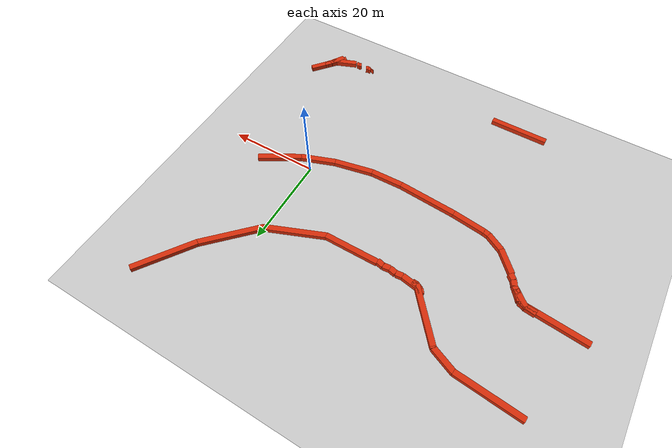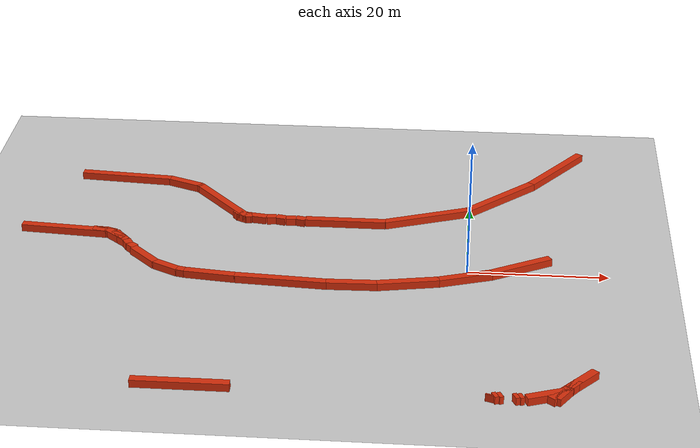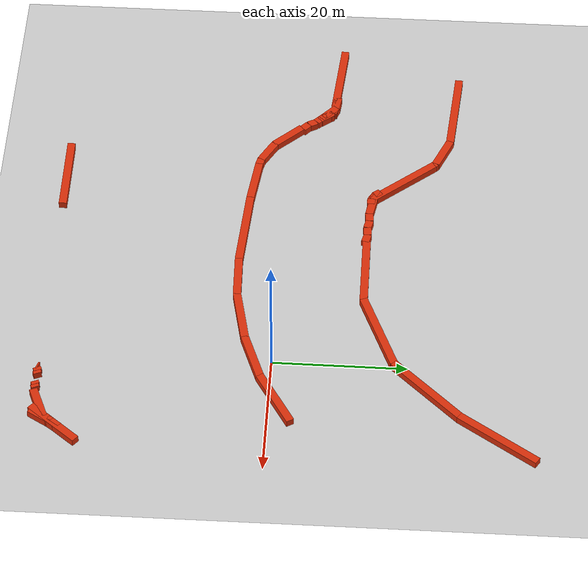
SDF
<sdf version="1.6">
 <world name="default">
  <include><uri>model://ground_plane</uri></include>
  <model name="track_inner_guardrail">
   <static>true</static>
   <link name="seg_015">
    <pose>-36.27 -33.86 0.55 0 0 0.0002</pose>
    <collision name="col"><geometry><box><size>13.00 1.20 1.1</size></box></geometry></collision>
    <visual name="vis">
     <geometry><box><size>13.00 1.20 1.1</size></box></geometry>
     <material>
      <ambient>0.35 0.08 0.02 1</ambient>
      <diffuse>0.85 0.18 0.04 1</diffuse>
      <specular>0.2 0.2 0.2 1</specular>
     </material>
    </visual>
   </link>
   <link name="seg_023">
    <pose>12.61 -32.78 0.55 0 0 1.0220</pose>
    <collision name="col"><geometry><box><size>3.21 1.20 1.1</size></box></geometry></collision>
    <visual name="vis">
     <geometry><box><size>3.21 1.20 1.1</size></box></geometry>
     <material>
      <ambient>0.35 0.08 0.02 1</ambient>
      <diffuse>0.85 0.18 0.04 1</diffuse>
      <specular>0.2 0.2 0.2 1</specular>
     </material>
    </visual>
   </link>
   <link name="seg_024">
    <pose>13.56 -31.17 0.55 0 0 1.1524</pose>
    <collision name="col"><geometry><box><size>0.67 1.20 1.1</size></box></geometry></collision>
    <visual name="vis">
     <geometry><box><size>0.67 1.20 1.1</size></box></geometry>
     <material>
      <ambient>0.35 0.08 0.02 1</ambient>
      <diffuse>0.85 0.18 0.04 1</diffuse>
      <specular>0.2 0.2 0.2 1</specular>
     </material>
    </visual>
   </link>
   <link name="seg_039">
    <pose>13.76 -30.94 0.55 0 0 -2.2137</pose>
    <collision name="col"><geometry><box><size>3.06 1.20 1.1</size></box></geometry></collision>
    <visual name="vis">
     <geometry><box><size>3.06 1.20 1.1</size></box></geometry>
     <material>
      <ambient>0.35 0.08 0.02 1</ambient>
      <diffuse>0.85 0.18 0.04 1</diffuse>
      <specular>0.2 0.2 0.2 1</specular>
     </material>
    </visual>
   </link>
   <link name="seg_040">
    <pose>10.44 -33.08 0.55 0 0 -2.7667</pose>
    <collision name="col"><geometry><box><size>5.35 1.20 1.1</size></box></geometry></collision>
    <visual name="vis">
     <geometry><box><size>5.35 1.20 1.1</size></box></geometry>
     <material>
      <ambient>0.35 0.08 0.02 1</ambient>
      <diffuse>0.85 0.18 0.04 1</diffuse>
      <specular>0.2 0.2 0.2 1</specular>
     </material>
    </visual>
   </link>
   <link name="seg_041">
    <pose>7.30 -33.90 0.55 0 0 -2.7241</pose>
    <collision name="col"><geometry><box><size>0.57 1.20 1.1</size></box></geometry></collision>
    <visual name="vis">
     <geometry><box><size>0.57 1.20 1.1</size></box></geometry>
     <material>
      <ambient>0.35 0.08 0.02 1</ambient>
      <diffuse>0.85 0.18 0.04 1</diffuse>
      <specular>0.2 0.2 0.2 1</specular>
     </material>
    </visual>
   </link>
   <link name="seg_042">
    <pose>6.69 -33.94 0.55 0 0 -2.7241</pose>
    <collision name="col"><geometry><box><size>0.57 1.20 1.1</size></box></geometry></collision>
    <visual name="vis">
     <geometry><box><size>0.57 1.20 1.1</size></box></geometry>
     <material>
      <ambient>0.35 0.08 0.02 1</ambient>
      <diffuse>0.85 0.18 0.04 1</diffuse>
      <specular>0.2 0.2 0.2 1</specular>
     </material>
    </visual>
   </link>
   <link name="seg_045">
    <pose>4.65 -33.88 0.55 0 0 -2.7241</pose>
    <collision name="col"><geometry><box><size>0.57 1.20 1.1</size></box></geometry></collision>
    <visual name="vis">
     <geometry><box><size>0.57 1.20 1.1</size></box></geometry>
     <material>
      <ambient>0.35 0.08 0.02 1</ambient>
      <diffuse>0.85 0.18 0.04 1</diffuse>
      <specular>0.2 0.2 0.2 1</specular>
     </material>
    </visual>
   </link>
   <link name="seg_046">
    <pose>4.03 -33.91 0.55 0 0 -2.7241</pose>
    <collision name="col"><geometry><box><size>0.57 1.20 1.1</size></box></geometry></collision>
    <visual name="vis">
     <geometry><box><size>0.57 1.20 1.1</size></box></geometry>
     <material>
      <ambient>0.35 0.08 0.02 1</ambient>
      <diffuse>0.85 0.18 0.04 1</diffuse>
      <specular>0.2 0.2 0.2 1</specular>
     </material>
    </visual>
   </link>
   <link name="seg_047">
    <pose>3.37 -33.96 0.55 0 0 1.2462</pose>
    <collision name="col"><geometry><box><size>0.23 1.20 1.1</size></box></geometry></collision>
    <visual name="vis">
     <geometry><box><size>0.23 1.20 1.1</size></box></geometry>
     <material>
      <ambient>0.35 0.08 0.02 1</ambient>
      <diffuse>0.85 0.18 0.04 1</diffuse>
      <specular>0.2 0.2 0.2 1</specular>
     </material>
    </visual>
   </link>
   <link name="seg_053">
    <pose>14.02 -30.56 0.55 0 0 0.8808</pose>
    <collision name="col"><geometry><box><size>9.22 1.20 1.1</size></box></geometry></collision>
    <visual name="vis">
     <geometry><box><size>9.22 1.20 1.1</size></box></geometry>
     <material>
      <ambient>0.35 0.08 0.02 1</ambient>
      <diffuse>0.85 0.18 0.04 1</diffuse>
      <specular>0.2 0.2 0.2 1</specular>
     </material>
    </visual>
   </link>
   <link name="seg_171">
    <pose>7.51 0.97 0.55 0 0 -2.6102</pose>
    <collision name="col"><geometry><box><size>9.80 1.20 1.1</size></box></geometry></collision>
    <visual name="vis">
     <geometry><box><size>9.80 1.20 1.1</size></box></geometry>
     <material>
      <ambient>0.35 0.08 0.02 1</ambient>
      <diffuse>0.85 0.18 0.04 1</diffuse>
      <specular>0.2 0.2 0.2 1</specular>
     </material>
    </visual>
   </link>
   <link name="seg_172">
    <pose>-0.34 -2.81 0.55 0 0 -2.7935</pose>
    <collision name="col"><geometry><box><size>7.96 1.20 1.1</size></box></geometry></collision>
    <visual name="vis">
     <geometry><box><size>7.96 1.20 1.1</size></box></geometry>
     <material>
      <ambient>0.35 0.08 0.02 1</ambient>
      <diffuse>0.85 0.18 0.04 1</diffuse>
      <specular>0.2 0.2 0.2 1</specular>
     </material>
    </visual>
   </link>
   <link name="seg_173">
    <pose>-8.31 -5.02 0.55 0 0 -2.9407</pose>
    <collision name="col"><geometry><box><size>8.87 1.20 1.1</size></box></geometry></collision>
    <visual name="vis">
     <geometry><box><size>8.87 1.20 1.1</size></box></geometry>
     <material>
      <ambient>0.35 0.08 0.02 1</ambient>
      <diffuse>0.85 0.18 0.04 1</diffuse>
      <specular>0.2 0.2 0.2 1</specular>
     </material>
    </visual>
   </link>
   <link name="seg_174">
    <pose>-16.16 -5.99 0.55 0 0 -3.1138</pose>
    <collision name="col"><geometry><box><size>7.26 1.20 1.1</size></box></geometry></collision>
    <visual name="vis">
     <geometry><box><size>7.26 1.20 1.1</size></box></geometry>
     <material>
      <ambient>0.35 0.08 0.02 1</ambient>
      <diffuse>0.85 0.18 0.04 1</diffuse>
      <specular>0.2 0.2 0.2 1</specular>
     </material>
    </visual>
   </link>
   <link name="seg_175">
    <pose>-26.22 -5.66 0.55 0 0 3.0745</pose>
    <collision name="col"><geometry><box><size>13.13 1.20 1.1</size></box></geometry></collision>
    <visual name="vis">
     <geometry><box><size>13.13 1.20 1.1</size></box></geometry>
     <material>
      <ambient>0.35 0.08 0.02 1</ambient>
      <diffuse>0.85 0.18 0.04 1</diffuse>
      <specular>0.2 0.2 0.2 1</specular>
     </material>
    </visual>
   </link>
   <link name="seg_176">
    <pose>-36.36 -4.78 0.55 0 0 3.0208</pose>
    <collision name="col"><geometry><box><size>7.48 1.20 1.1</size></box></geometry></collision>
    <visual name="vis">
     <geometry><box><size>7.48 1.20 1.1</size></box></geometry>
     <material>
      <ambient>0.35 0.08 0.02 1</ambient>
      <diffuse>0.85 0.18 0.04 1</diffuse>
      <specular>0.2 0.2 0.2 1</specular>
     </material>
    </visual>
   </link>
   <link name="seg_177">
    <pose>-40.56 -4.20 0.55 0 0 2.9054</pose>
    <collision name="col"><geometry><box><size>1.24 1.20 1.1</size></box></geometry></collision>
    <visual name="vis">
     <geometry><box><size>1.24 1.20 1.1</size></box></geometry>
     <material>
      <ambient>0.35 0.08 0.02 1</ambient>
      <diffuse>0.85 0.18 0.04 1</diffuse>
      <specular>0.2 0.2 0.2 1</specular>
     </material>
    </visual>
   </link>
   <link name="seg_178">
    <pose>-42.88 -3.12 0.55 0 0 2.6422</pose>
    <collision name="col"><geometry><box><size>4.04 1.20 1.1</size></box></geometry></collision>
    <visual name="vis">
     <geometry><box><size>4.04 1.20 1.1</size></box></geometry>
     <material>
      <ambient>0.35 0.08 0.02 1</ambient>
      <diffuse>0.85 0.18 0.04 1</diffuse>
      <specular>0.2 0.2 0.2 1</specular>
     </material>
    </visual>
   </link>
   <link name="seg_179">
    <pose>-46.54 -0.18 0.55 0 0 2.3341</pose>
    <collision name="col"><geometry><box><size>5.58 1.20 1.1</size></box></geometry></collision>
    <visual name="vis">
     <geometry><box><size>5.58 1.20 1.1</size></box></geometry>
     <material>
      <ambient>0.35 0.08 0.02 1</ambient>
      <diffuse>0.85 0.18 0.04 1</diffuse>
      <specular>0.2 0.2 0.2 1</specular>
     </material>
    </visual>
   </link>
   <link name="seg_180">
    <pose>-48.75 2.42 0.55 0 0 2.4054</pose>
    <collision name="col"><geometry><box><size>1.36 1.20 1.1</size></box></geometry></collision>
    <visual name="vis">
     <geometry><box><size>1.36 1.20 1.1</size></box></geometry>
     <material>
      <ambient>0.35 0.08 0.02 1</ambient>
      <diffuse>0.85 0.18 0.04 1</diffuse>
      <specular>0.2 0.2 0.2 1</specular>
     </material>
    </visual>
   </link>
   <link name="seg_181">
    <pose>-49.57 3.47 0.55 0 0 2.0626</pose>
    <collision name="col"><geometry><box><size>1.34 1.20 1.1</size></box></geometry></collision>
    <visual name="vis">
     <geometry><box><size>1.34 1.20 1.1</size></box></geometry>
     <material>
      <ambient>0.35 0.08 0.02 1</ambient>
      <diffuse>0.85 0.18 0.04 1</diffuse>
      <specular>0.2 0.2 0.2 1</specular>
     </material>
    </visual>
   </link>
   <link name="seg_182">
    <pose>-50.47 4.58 0.55 0 0 2.4052</pose>
    <collision name="col"><geometry><box><size>1.57 1.20 1.1</size></box></geometry></collision>
    <visual name="vis">
     <geometry><box><size>1.57 1.20 1.1</size></box></geometry>
     <material>
      <ambient>0.35 0.08 0.02 1</ambient>
      <diffuse>0.85 0.18 0.04 1</diffuse>
      <specular>0.2 0.2 0.2 1</specular>
     </material>
    </visual>
   </link>
   <link name="seg_183">
    <pose>-51.45 5.84 0.55 0 0 2.0725</pose>
    <collision name="col"><geometry><box><size>1.66 1.20 1.1</size></box></geometry></collision>
    <visual name="vis">
     <geometry><box><size>1.66 1.20 1.1</size></box></geometry>
     <material>
      <ambient>0.35 0.08 0.02 1</ambient>
      <diffuse>0.85 0.18 0.04 1</diffuse>
      <specular>0.2 0.2 0.2 1</specular>
     </material>
    </visual>
   </link>
   <link name="seg_184">
    <pose>-53.63 6.90 0.55 0 0 2.9560</pose>
    <collision name="col"><geometry><box><size>3.62 1.20 1.1</size></box></geometry></collision>
    <visual name="vis">
     <geometry><box><size>3.62 1.20 1.1</size></box></geometry>
     <material>
      <ambient>0.35 0.08 0.02 1</ambient>
      <diffuse>0.85 0.18 0.04 1</diffuse>
      <specular>0.2 0.2 0.2 1</specular>
     </material>
    </visual>
   </link>
   <link name="seg_185">
    <pose>-54.29 7.12 0.55 0 0 -0.0997</pose>
    <collision name="col"><geometry><box><size>2.37 1.20 1.1</size></box></geometry></collision>
    <visual name="vis">
     <geometry><box><size>2.37 1.20 1.1</size></box></geometry>
     <material>
      <ambient>0.35 0.08 0.02 1</ambient>
      <diffuse>0.85 0.18 0.04 1</diffuse>
      <specular>0.2 0.2 0.2 1</specular>
     </material>
    </visual>
   </link>
   <link name="seg_186">
    <pose>-51.93 5.91 0.55 0 0 -0.7277</pose>
    <collision name="col"><geometry><box><size>3.44 1.20 1.1</size></box></geometry></collision>
    <visual name="vis">
     <geometry><box><size>3.44 1.20 1.1</size></box></geometry>
     <material>
      <ambient>0.35 0.08 0.02 1</ambient>
      <diffuse>0.85 0.18 0.04 1</diffuse>
      <specular>0.2 0.2 0.2 1</specular>
     </material>
    </visual>
   </link>
   <link name="seg_187">
    <pose>-50.55 4.72 0.55 0 0 -0.5042</pose>
    <collision name="col"><geometry><box><size>0.46 1.20 1.1</size></box></geometry></collision>
    <visual name="vis">
     <geometry><box><size>0.46 1.20 1.1</size></box></geometry>
     <material>
      <ambient>0.35 0.08 0.02 1</ambient>
      <diffuse>0.85 0.18 0.04 1</diffuse>
      <specular>0.2 0.2 0.2 1</specular>
     </material>
    </visual>
   </link>
   <link name="seg_188">
    <pose>-51.17 5.56 0.55 0 0 2.2671</pose>
    <collision name="col"><geometry><box><size>2.52 1.20 1.1</size></box></geometry></collision>
    <visual name="vis">
     <geometry><box><size>2.52 1.20 1.1</size></box></geometry>
     <material>
      <ambient>0.35 0.08 0.02 1</ambient>
      <diffuse>0.85 0.18 0.04 1</diffuse>
      <specular>0.2 0.2 0.2 1</specular>
     </material>
    </visual>
   </link>
   <link name="seg_189">
    <pose>-52.68 6.78 0.55 0 0 2.7554</pose>
    <collision name="col"><geometry><box><size>1.61 1.20 1.1</size></box></geometry></collision>
    <visual name="vis">
     <geometry><box><size>1.61 1.20 1.1</size></box></geometry>
     <material>
      <ambient>0.35 0.08 0.02 1</ambient>
      <diffuse>0.85 0.18 0.04 1</diffuse>
      <specular>0.2 0.2 0.2 1</specular>
     </material>
    </visual>
   </link>
   <link name="seg_190">
    <pose>-59.77 7.36 0.55 0 0 3.0591</pose>
    <collision name="col"><geometry><box><size>12.81 1.20 1.1</size></box></geometry></collision>
    <visual name="vis">
     <geometry><box><size>12.81 1.20 1.1</size></box></geometry>
     <material>
      <ambient>0.35 0.08 0.02 1</ambient>
      <diffuse>0.85 0.18 0.04 1</diffuse>
      <specular>0.2 0.2 0.2 1</specular>
     </material>
    </visual>
   </link>
  </model>
  <model name="track_outer_guardrail">
   <static>true</static>
   <link name="seg_102">
    <pose>13.23 33.34 0.55 0 0 -2.1741</pose>
    <collision name="col"><geometry><box><size>13.77 1.20 1.1</size></box></geometry></collision>
    <visual name="vis">
     <geometry><box><size>13.77 1.20 1.1</size></box></geometry>
     <material>
      <ambient>0.35 0.08 0.02 1</ambient>
      <diffuse>0.85 0.18 0.04 1</diffuse>
      <specular>0.2 0.2 0.2 1</specular>
     </material>
    </visual>
   </link>
   <link name="seg_103">
    <pose>4.58 22.83 0.55 0 0 -2.3437</pose>
    <collision name="col"><geometry><box><size>13.79 1.20 1.1</size></box></geometry></collision>
    <visual name="vis">
     <geometry><box><size>13.79 1.20 1.1</size></box></geometry>
     <material>
      <ambient>0.35 0.08 0.02 1</ambient>
      <diffuse>0.85 0.18 0.04 1</diffuse>
      <specular>0.2 0.2 0.2 1</specular>
     </material>
    </visual>
   </link>
   <link name="seg_104">
    <pose>-6.36 15.48 0.55 0 0 -2.7616</pose>
    <collision name="col"><geometry><box><size>13.41 1.20 1.1</size></box></geometry></collision>
    <visual name="vis">
     <geometry><box><size>13.41 1.20 1.1</size></box></geometry>
     <material>
      <ambient>0.35 0.08 0.02 1</ambient>
      <diffuse>0.85 0.18 0.04 1</diffuse>
      <specular>0.2 0.2 0.2 1</specular>
     </material>
    </visual>
   </link>
   <link name="seg_105">
    <pose>-18.43 13.00 0.55 0 0 -3.1394</pose>
    <collision name="col"><geometry><box><size>11.94 1.20 1.1</size></box></geometry></collision>
    <visual name="vis">
     <geometry><box><size>11.94 1.20 1.1</size></box></geometry>
     <material>
      <ambient>0.35 0.08 0.02 1</ambient>
      <diffuse>0.85 0.18 0.04 1</diffuse>
      <specular>0.2 0.2 0.2 1</specular>
     </material>
    </visual>
   </link>
   <link name="seg_106">
    <pose>-25.10 12.92 0.55 0 0 2.9030</pose>
    <collision name="col"><geometry><box><size>1.51 1.20 1.1</size></box></geometry></collision>
    <visual name="vis">
     <geometry><box><size>1.51 1.20 1.1</size></box></geometry>
     <material>
      <ambient>0.35 0.08 0.02 1</ambient>
      <diffuse>0.85 0.18 0.04 1</diffuse>
      <specular>0.2 0.2 0.2 1</specular>
     </material>
    </visual>
   </link>
   <link name="seg_107">
    <pose>-26.57 13.02 0.55 0 0 -3.0397</pose>
    <collision name="col"><geometry><box><size>1.50 1.20 1.1</size></box></geometry></collision>
    <visual name="vis">
     <geometry><box><size>1.50 1.20 1.1</size></box></geometry>
     <material>
      <ambient>0.35 0.08 0.02 1</ambient>
      <diffuse>0.85 0.18 0.04 1</diffuse>
      <specular>0.2 0.2 0.2 1</specular>
     </material>
    </visual>
   </link>
   <link name="seg_108">
    <pose>-28.04 13.11 0.55 0 0 2.9103</pose>
    <collision name="col"><geometry><box><size>1.49 1.20 1.1</size></box></geometry></collision>
    <visual name="vis">
     <geometry><box><size>1.49 1.20 1.1</size></box></geometry>
     <material>
      <ambient>0.35 0.08 0.02 1</ambient>
      <diffuse>0.85 0.18 0.04 1</diffuse>
      <specular>0.2 0.2 0.2 1</specular>
     </material>
    </visual>
   </link>
   <link name="seg_109">
    <pose>-29.50 13.20 0.55 0 0 -3.0305</pose>
    <collision name="col"><geometry><box><size>1.48 1.20 1.1</size></box></geometry></collision>
    <visual name="vis">
     <geometry><box><size>1.48 1.20 1.1</size></box></geometry>
     <material>
      <ambient>0.35 0.08 0.02 1</ambient>
      <diffuse>0.85 0.18 0.04 1</diffuse>
      <specular>0.2 0.2 0.2 1</specular>
     </material>
    </visual>
   </link>
   <link name="seg_110">
    <pose>-32.31 13.49 0.55 0 0 2.9658</pose>
    <collision name="col"><geometry><box><size>4.21 1.20 1.1</size></box></geometry></collision>
    <visual name="vis">
     <geometry><box><size>4.21 1.20 1.1</size></box></geometry>
     <material>
      <ambient>0.35 0.08 0.02 1</ambient>
      <diffuse>0.85 0.18 0.04 1</diffuse>
      <specular>0.2 0.2 0.2 1</specular>
     </material>
    </visual>
   </link>
   <link name="seg_111">
    <pose>-34.67 14.24 0.55 0 0 2.2141</pose>
    <collision name="col"><geometry><box><size>1.09 1.20 1.1</size></box></geometry></collision>
    <visual name="vis">
     <geometry><box><size>1.09 1.20 1.1</size></box></geometry>
     <material>
      <ambient>0.35 0.08 0.02 1</ambient>
      <diffuse>0.85 0.18 0.04 1</diffuse>
      <specular>0.2 0.2 0.2 1</specular>
     </material>
    </visual>
   </link>
   <link name="seg_112">
    <pose>-34.69 14.27 0.55 0 0 -0.9088</pose>
    <collision name="col"><geometry><box><size>1.03 1.20 1.1</size></box></geometry></collision>
    <visual name="vis">
     <geometry><box><size>1.03 1.20 1.1</size></box></geometry>
     <material>
      <ambient>0.35 0.08 0.02 1</ambient>
      <diffuse>0.85 0.18 0.04 1</diffuse>
      <specular>0.2 0.2 0.2 1</specular>
     </material>
    </visual>
   </link>
   <link name="seg_113">
    <pose>-33.85 13.62 0.55 0 0 -0.4876</pose>
    <collision name="col"><geometry><box><size>1.39 1.20 1.1</size></box></geometry></collision>
    <visual name="vis">
     <geometry><box><size>1.39 1.20 1.1</size></box></geometry>
     <material>
      <ambient>0.35 0.08 0.02 1</ambient>
      <diffuse>0.85 0.18 0.04 1</diffuse>
      <specular>0.2 0.2 0.2 1</specular>
     </material>
    </visual>
   </link>
   <link name="seg_114">
    <pose>-32.87 13.31 0.55 0 0 -0.0270</pose>
    <collision name="col"><geometry><box><size>0.94 1.20 1.1</size></box></geometry></collision>
    <visual name="vis">
     <geometry><box><size>0.94 1.20 1.1</size></box></geometry>
     <material>
      <ambient>0.35 0.08 0.02 1</ambient>
      <diffuse>0.85 0.18 0.04 1</diffuse>
      <specular>0.2 0.2 0.2 1</specular>
     </material>
    </visual>
   </link>
   <link name="seg_115">
    <pose>-32.93 13.32 0.55 0 0 3.0895</pose>
    <collision name="col"><geometry><box><size>1.07 1.20 1.1</size></box></geometry></collision>
    <visual name="vis">
     <geometry><box><size>1.07 1.20 1.1</size></box></geometry>
     <material>
      <ambient>0.35 0.08 0.02 1</ambient>
      <diffuse>0.85 0.18 0.04 1</diffuse>
      <specular>0.2 0.2 0.2 1</specular>
     </material>
    </visual>
   </link>
   <link name="seg_116">
    <pose>-37.41 18.04 0.55 0 0 2.2771</pose>
    <collision name="col"><geometry><box><size>12.46 1.20 1.1</size></box></geometry></collision>
    <visual name="vis">
     <geometry><box><size>12.46 1.20 1.1</size></box></geometry>
     <material>
      <ambient>0.35 0.08 0.02 1</ambient>
      <diffuse>0.85 0.18 0.04 1</diffuse>
      <specular>0.2 0.2 0.2 1</specular>
     </material>
    </visual>
   </link>
   <link name="seg_117">
    <pose>-41.54 22.86 0.55 0 0 2.3373</pose>
    <collision name="col"><geometry><box><size>0.46 1.20 1.1</size></box></geometry></collision>
    <visual name="vis">
     <geometry><box><size>0.46 1.20 1.1</size></box></geometry>
     <material>
      <ambient>0.35 0.08 0.02 1</ambient>
      <diffuse>0.85 0.18 0.04 1</diffuse>
      <specular>0.2 0.2 0.2 1</specular>
     </material>
    </visual>
   </link>
   <link name="seg_118">
    <pose>-44.17 24.06 0.55 0 0 2.7436</pose>
    <collision name="col"><geometry><box><size>5.46 1.20 1.1</size></box></geometry></collision>
    <visual name="vis">
     <geometry><box><size>5.46 1.20 1.1</size></box></geometry>
     <material>
      <ambient>0.35 0.08 0.02 1</ambient>
      <diffuse>0.85 0.18 0.04 1</diffuse>
      <specular>0.2 0.2 0.2 1</specular>
     </material>
    </visual>
   </link>
   <link name="seg_119">
    <pose>-53.57 25.66 0.55 0 0 3.0608</pose>
    <collision name="col"><geometry><box><size>14.04 1.20 1.1</size></box></geometry></collision>
    <visual name="vis">
     <geometry><box><size>14.04 1.20 1.1</size></box></geometry>
     <material>
      <ambient>0.35 0.08 0.02 1</ambient>
      <diffuse>0.85 0.18 0.04 1</diffuse>
      <specular>0.2 0.2 0.2 1</specular>
     </material>
    </visual>
   </link>
  </model>
 </world>
</sdf>
